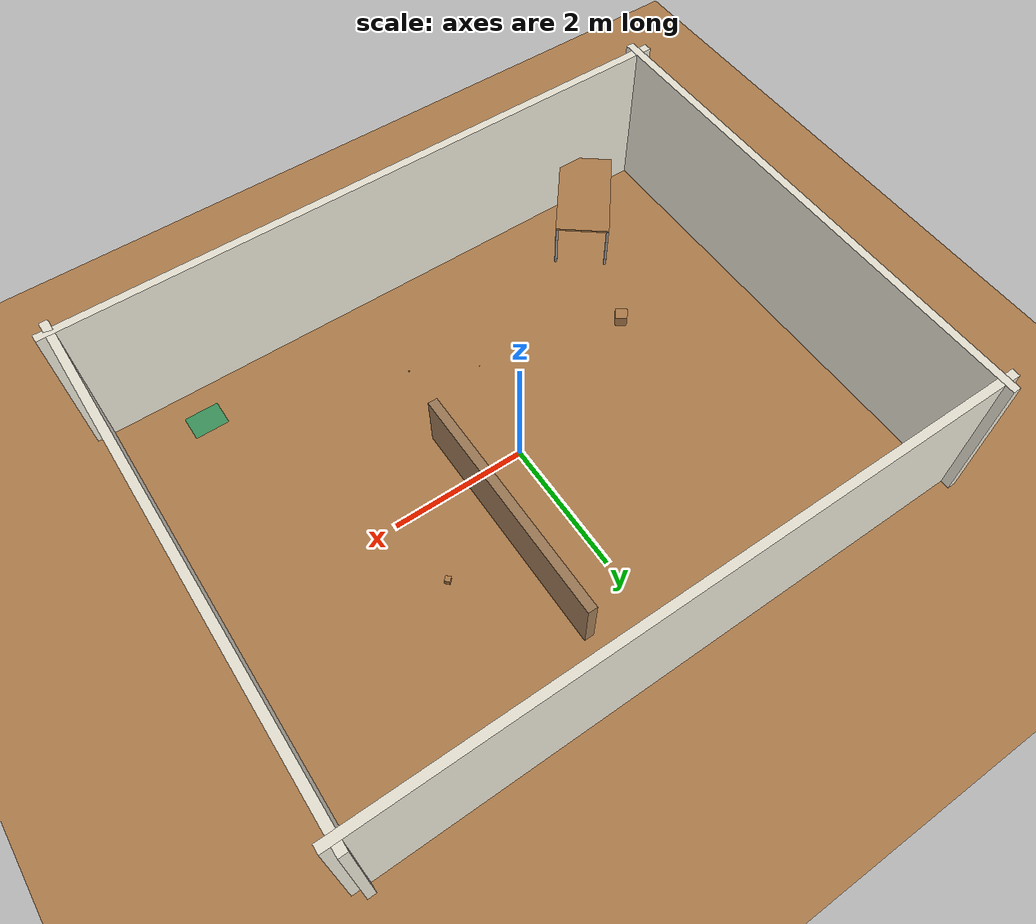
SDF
<sdf version="1.7">
 <world name="pose_course">
  <light name="sun" type="directional">
   <pose>1 -2 18 0 0 0</pose>
   <diffuse>0.95 0.93 0.88 1</diffuse>
   <specular>0.12 0.12 0.1 1</specular>
   <attenuation>
    <range>2000</range>
    <constant>0.9</constant>
    <linear>0.00001</linear>
    <quadratic>0.0000005</quadratic>
   </attenuation>
   <direction>-0.25 0.2 -0.95</direction>
  </light>
  <light name="corner_lamp" type="point">
   <cast_shadows>0</cast_shadows>
   <pose>3.2 2.9 1.6 0 0 0</pose>
   <diffuse>0.55 0.48 0.38 1</diffuse>
   <specular>0.05 0.05 0.04 1</specular>
   <attenuation>
    <range>12</range>
    <constant>0.5</constant>
    <linear>0.12</linear>
    <quadratic>0.04</quadratic>
   </attenuation>
  </light>
  <model name="ground_plane">
   <static>1</static>
   <link name="link">
    <collision name="collision">
     <geometry><plane><normal>0 0 1</normal><size>18 18</size></plane></geometry>
     <surface><friction><ode><mu>0.95</mu><mu2>0.9</mu2></ode></friction></surface>
    </collision>
    <visual name="visual">
     <cast_shadows>0</cast_shadows>
     <geometry><plane><normal>0 0 1</normal><size>18 18</size></plane></geometry>
     <material>
      <script><uri>file://media/materials/scripts/gazebo.material</uri><name>Gazebo/Wood</name></script>
     </material>
    </visual>
   </link>
  </model>
  <gravity>0 0 -9.81</gravity>
  <physics type="ode">
   <max_step_size>0.001</max_step_size>
   <real_time_factor>1</real_time_factor>
   <real_time_update_rate>1000</real_time_update_rate>
   <ode><solver><type>quick</type><iters>50</iters></solver></ode>
  </physics>
  <scene>
   <ambient>0.52 0.52 0.54 1</ambient>
   <background>0.55 0.58 0.62 1</background>
   <shadows>1</shadows>
   <sky>
    <time>11</time>
    <sunrise>6</sunrise>
    <sunset>18</sunset>
    <clouds>
     <speed>3</speed>
     <direction>1 0.1 0</direction>
     <humidity>0.18</humidity>
     <mean_size>0.45</mean_size>
     <altitude>12</altitude>
    </clouds>
   </sky>
  </scene>
  <model name="wall_north">
   <static>1</static>
   <pose>0 3.56 1.175 0 0 0</pose>
   <link name="link">
    <collision name="c"><geometry><box><size>9.5 0.12 2.35</size></box></geometry></collision>
    <visual name="v">
     <geometry><box><size>9.5 0.12 2.35</size></box></geometry>
     <material><ambient>0.86 0.84 0.78 1</ambient><diffuse>0.92 0.9 0.84 1</diffuse></material>
    </visual>
   </link>
  </model>
  <model name="wall_south">
   <static>1</static>
   <pose>0 -3.56 1.175 0 0 0</pose>
   <link name="link">
    <collision name="c"><geometry><box><size>9.5 0.12 2.35</size></box></geometry></collision>
    <visual name="v">
     <geometry><box><size>9.5 0.12 2.35</size></box></geometry>
     <material><ambient>0.86 0.84 0.78 1</ambient><diffuse>0.92 0.9 0.84 1</diffuse></material>
    </visual>
   </link>
  </model>
  <model name="wall_east">
   <static>1</static>
   <pose>4.56 0 1.175 0 0 0</pose>
   <link name="link">
    <collision name="c"><geometry><box><size>0.12 7.5 2.35</size></box></geometry></collision>
    <visual name="v">
     <geometry><box><size>0.12 7.5 2.35</size></box></geometry>
     <material><ambient>0.86 0.84 0.78 1</ambient><diffuse>0.92 0.9 0.84 1</diffuse></material>
    </visual>
   </link>
  </model>
  <model name="wall_west">
   <static>1</static>
   <pose>-4.56 0 1.175 0 0 0</pose>
   <link name="link">
    <collision name="c"><geometry><box><size>0.12 7.5 2.35</size></box></geometry></collision>
    <visual name="v">
     <geometry><box><size>0.12 7.5 2.35</size></box></geometry>
     <material><ambient>0.86 0.84 0.78 1</ambient><diffuse>0.92 0.9 0.84 1</diffuse></material>
    </visual>
   </link>
  </model>
  <model name="baseboard_north">
   <static>1</static>
   <pose>0 3.46 0.12 0 0 0</pose>
   <link name="link">
    <visual name="v">
     <geometry><box><size>9.2 0.04 0.24</size></box></geometry>
     <material><ambient>0.42 0.3 0.2 1</ambient><diffuse>0.5 0.36 0.24 1</diffuse></material>
    </visual>
   </link>
  </model>
  <model name="room_divider_low">
   <static>1</static>
   <pose>0.8 0.9 0.45 0 0 0</pose>
   <link name="link">
    <collision name="c"><geometry><box><size>0.14 3.6 0.9</size></box></geometry></collision>
    <visual name="v">
     <geometry><box><size>0.14 3.6 0.9</size></box></geometry>
     <material><ambient>0.55 0.42 0.3 1</ambient><diffuse>0.62 0.48 0.34 1</diffuse></material>
    </visual>
   </link>
  </model>
  <model name="return_zone_marker">
   <static>1</static>
   <pose>3.35 -2.95 0.003 0 0 0</pose>
   <link name="link">
    <visual name="v">
     <geometry><box><size>0.5 0.38 0.002</size></box></geometry>
     <material><ambient>0.15 0.55 0.35 0.85</ambient><diffuse>0.2 0.65 0.42 0.85</diffuse></material>
    </visual>
   </link>
  </model>
  <include><uri>model://table</uri><name>wood_side_table</name><pose>-3.15 -2.85 0 0 0 0.9</pose></include>
  <include>
   <uri>model://wood_cube_1cm</uri>
   <name>clutter_cube1_1</name>
   <pose>-0.35 -1.55 0 0 0 0.4</pose>
  </include>
  <include>
   <uri>model://wood_cube_2cm</uri>
   <name>clutter_cube2_1</name>
   <pose>0.55 -2.05 0 0 0 -0.2</pose>
  </include>
  <include>
   <uri>model://wood_cube_8cm</uri>
   <name>clutter_cube8_1</name>
   <pose>1.85 1.05 0 0 0 0.75</pose>
  </include>
  <include>
   <uri>model://wood_cube_18cm</uri>
   <name>clutter_cube18_1</name>
   <pose>-2.55 -1.05 0 0 0 0.9</pose>
  </include>
 </world>
</sdf>

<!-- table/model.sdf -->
<sdf version="1.5">
  <model name="table">
    <static>true</static>
    <link name="link">
      <collision name="surface">
        <pose>0 0 0.8 0 0 0</pose>
        <geometry>
          <box>
            <size>1.5 0.8 0.03</size>
          </box>
        </geometry>
        <surface>
          <friction>
            <ode>
              <mu>0.6</mu>
              <mu2>0.6</mu2>
            </ode>
          </friction>
        </surface>
      </collision>
      <visual name="visual1">
        <pose>0 0 0.8 0 0 0</pose>
        <geometry>
          <box>
            <size>1.5 0.8 0.03</size>
          </box>
        </geometry>
        <material>
          <script>
            <uri>file://media/materials/scripts/gazebo.material</uri>
            <name>Gazebo/Wood</name>
          </script>
        </material>
      </visual>
      <collision name="front_left_leg">
        <pose>0.68 0.38 0.38 0 0 0</pose>
        <geometry>
          <cylinder>
            <radius>0.02</radius>
            <length>0.76</length>
          </cylinder>
        </geometry>
      </collision>
      <visual name="front_left_leg">
        <pose>0.68 0.38 0.38 0 0 0</pose>
        <geometry>
          <cylinder>
            <radius>0.02</radius>
            <length>0.76</length>
          </cylinder>
        </geometry>
        <material>
          <script>
            <uri>file://media/materials/scripts/gazebo.material</uri>
            <name>Gazebo/Grey</name>
          </script>
        </material>
      </visual>
      <collision name="front_right_leg">
        <pose>0.68 -0.38 0.38 0 0 0</pose>
        <geometry>
          <cylinder>
            <radius>0.02</radius>
            <length>0.76</length>
          </cylinder>
        </geometry>
      </collision>
      <visual name="front_right_leg">
        <pose>0.68 -0.38 0.38 0 0 0</pose>
        <geometry>
          <cylinder>
            <radius>0.02</radius>
            <length>0.76</length>
          </cylinder>
        </geometry>
        <material>
          <script>
            <uri>file://media/materials/scripts/gazebo.material</uri>
            <name>Gazebo/Grey</name>
          </script>
        </material>
      </visual>
      <collision name="back_right_leg">
        <pose>-0.68 -0.38 0.38 0 0 0</pose>
        <geometry>
          <cylinder>
            <radius>0.02</radius>
            <length>0.76</length>
          </cylinder>
        </geometry>
      </collision>
      <visual name="back_right_leg">
        <pose>-0.68 -0.38 0.38 0 0 0</pose>
        <geometry>
          <cylinder>
            <radius>0.02</radius>
            <length>0.76</length>
          </cylinder>
        </geometry>
        <material>
          <script>
            <uri>file://media/materials/scripts/gazebo.material</uri>
            <name>Gazebo/Grey</name>
          </script>
        </material>
      </visual>
      <collision name="back_left_leg">
        <pose>-0.68 0.38 0.38 0 0 0</pose>
        <geometry>
          <cylinder>
            <radius>0.02</radius>
            <length>0.76</length>
          </cylinder>
        </geometry>
      </collision>
      <visual name="back_left_leg">
        <pose>-0.68 0.38 0.38 0 0 0</pose>
        <geometry>
          <cylinder>
            <radius>0.02</radius>
            <length>0.76</length>
          </cylinder>
        </geometry>
        <material>
          <script>
            <uri>file://media/materials/scripts/gazebo.material</uri>
            <name>Gazebo/Grey</name>
          </script>
        </material>
      </visual>
    </link>
  </model>
</sdf>

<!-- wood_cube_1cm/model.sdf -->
<sdf version="1.5">
  <model name="wood_cube_1cm">
    <link name="link">
      <pose>0 0 0.005 0 0 0</pose>
      <inertial>
        <mass>0.0002</mass>
        <inertia>
          <ixx>3.333333333333333e-11</ixx>
          <ixy>0</ixy>
          <ixz>0</ixz>
          <iyy>3.333333333333333e-11</iyy>
          <iyz>0</iyz>
          <izz>3.333333333333333e-11</izz>
        </inertia>
      </inertial>
      <collision name="collision">
        <geometry>
          <box>
            <size>0.01 0.01 0.01</size>
          </box>
        </geometry>
        <surface>
          <contact>
            <ode>
              <kp>100000</kp>
              <kd>1</kd>
              <max_vel>1.0</max_vel>
              <min_depth>0.0005</min_depth>
            </ode>
          </contact>
        </surface>
      </collision>
      <visual name="visual">
        <geometry>
          <box>
            <size>0.01 0.01 0.01</size>
          </box>
        </geometry>
        <material>
          <script>
            <uri>file://media/materials/scripts/gazebo.material</uri>
            <name>Gazebo/Wood</name>
          </script>
        </material>
      </visual>
    </link>
  </model>
</sdf>

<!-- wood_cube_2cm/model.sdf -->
<sdf version="1.5">
  <model name="wood_cube_2cm">
    <link name="link">
      <pose>0 0 0.01 0 0 0</pose>
      <inertial>
        <mass>0.0016</mass>
        <inertia>
          <ixx>1.0666666666666667e-09</ixx>
          <ixy>0</ixy>
          <ixz>0</ixz>
          <iyy>1.0666666666666667e-09</iyy>
          <iyz>0</iyz>
          <izz>1.0666666666666667e-09</izz>
        </inertia>
      </inertial>
      <collision name="collision">
        <geometry>
          <box>
            <size>0.02 0.02 0.02</size>
          </box>
        </geometry>
        <surface>
          <contact>
            <ode>
              <kp>100000</kp>
              <kd>1</kd>
              <max_vel>1.0</max_vel>
              <min_depth>0.001</min_depth>
            </ode>
          </contact>
        </surface>
      </collision>
      <visual name="visual">
        <geometry>
          <box>
            <size>0.02 0.02 0.02</size>
          </box>
        </geometry>
        <material>
          <script>
            <uri>file://media/materials/scripts/gazebo.material</uri>
            <name>Gazebo/Wood</name>
          </script>
        </material>
      </visual>
    </link>
  </model>
</sdf>

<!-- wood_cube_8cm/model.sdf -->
<sdf version="1.5">
  <model name="wood_cube_8cm">
    <link name="link">
      <pose>0 0 0.04 0 0 0</pose>
      <inertial>
        <mass>0.29</mass>
        <inertia>
          <ixx>0.00015466666666666667</ixx>
          <ixy>0</ixy>
          <ixz>0</ixz>
          <iyy>0.00015466666666666667</iyy>
          <iyz>0</iyz>
          <izz>0.00015466666666666667</izz>
        </inertia>
      </inertial>
      <collision name="collision">
        <geometry>
          <box>
            <size>0.08 0.08 0.08</size>
          </box>
        </geometry>
        <surface>
          <contact>
            <ode>
              <kp>100000</kp>
              <kd>1</kd>
              <max_vel>1.0</max_vel>
              <min_depth>0.001</min_depth>
            </ode>
          </contact>
        </surface>
      </collision>
      <visual name="visual">
        <geometry>
          <box>
            <size>0.08 0.08 0.08</size>
          </box>
        </geometry>
        <material>
          <script>
            <uri>file://media/materials/scripts/gazebo.material</uri>
            <name>Gazebo/Wood</name>
          </script>
        </material>
      </visual>
    </link>
  </model>
</sdf>

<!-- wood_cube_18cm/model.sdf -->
<sdf version="1.5">
  <model name="wood_cube_18cm">
    <link name="link">
      <pose>0 0 0.09 0 0 0</pose>
      <inertial>
        <mass>2.2</mass>
        <inertia>
          <ixx>0.01188</ixx>
          <ixy>0</ixy>
          <ixz>0</ixz>
          <iyy>0.01188</iyy>
          <iyz>0</iyz>
          <izz>0.01188</izz>
        </inertia>
      </inertial>
      <collision name="collision">
        <geometry>
          <box>
            <size>0.18 0.18 0.18</size>
          </box>
        </geometry>
        <surface>
          <contact>
            <ode>
              <kp>100000</kp>
              <kd>100</kd>
              <max_vel>100.0</max_vel>
              <min_depth>0.001</min_depth>
            </ode>
          </contact>
        </surface>
      </collision>
      <visual name="visual">
        <geometry>
          <box>
            <size>0.18 0.18 0.18</size>
          </box>
        </geometry>
        <material>
          <script>
            <uri>file://media/materials/scripts/gazebo.material</uri>
            <name>Gazebo/Wood</name>
          </script>
        </material>
      </visual>
    </link>
  </model>
</sdf>
